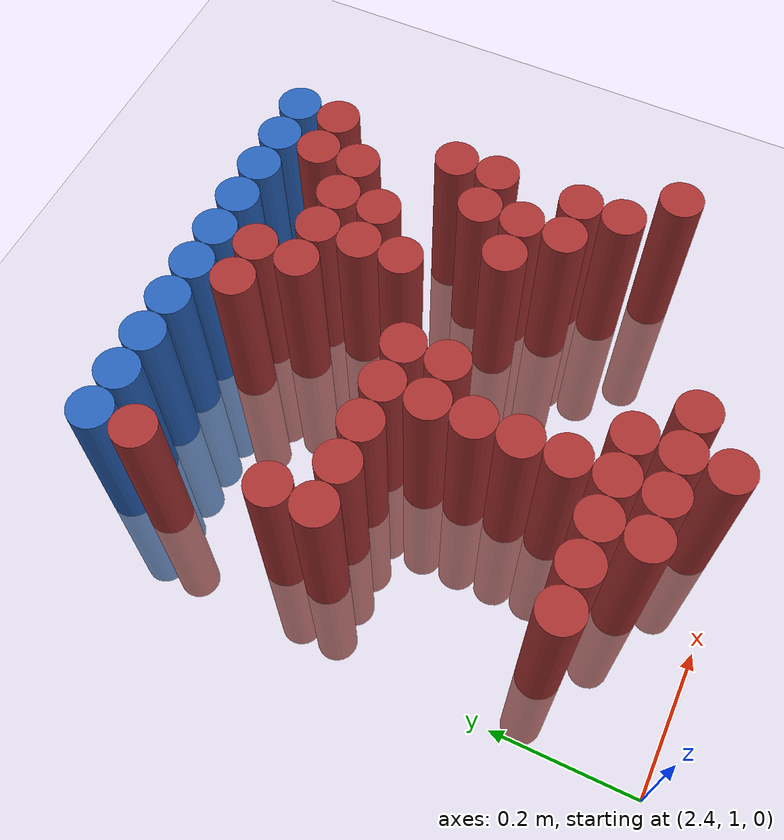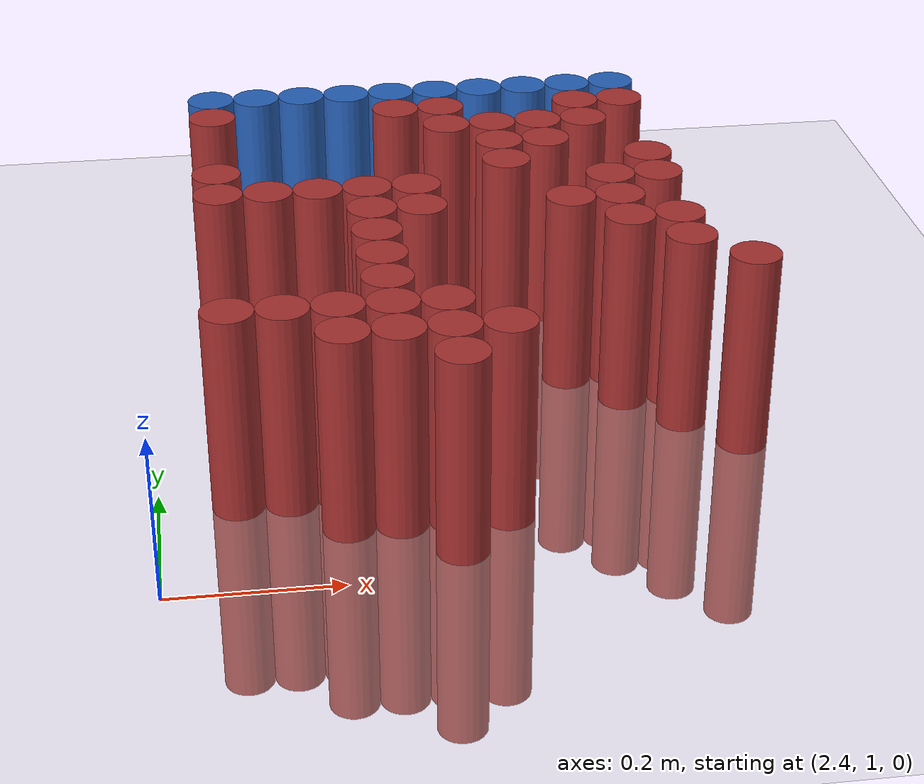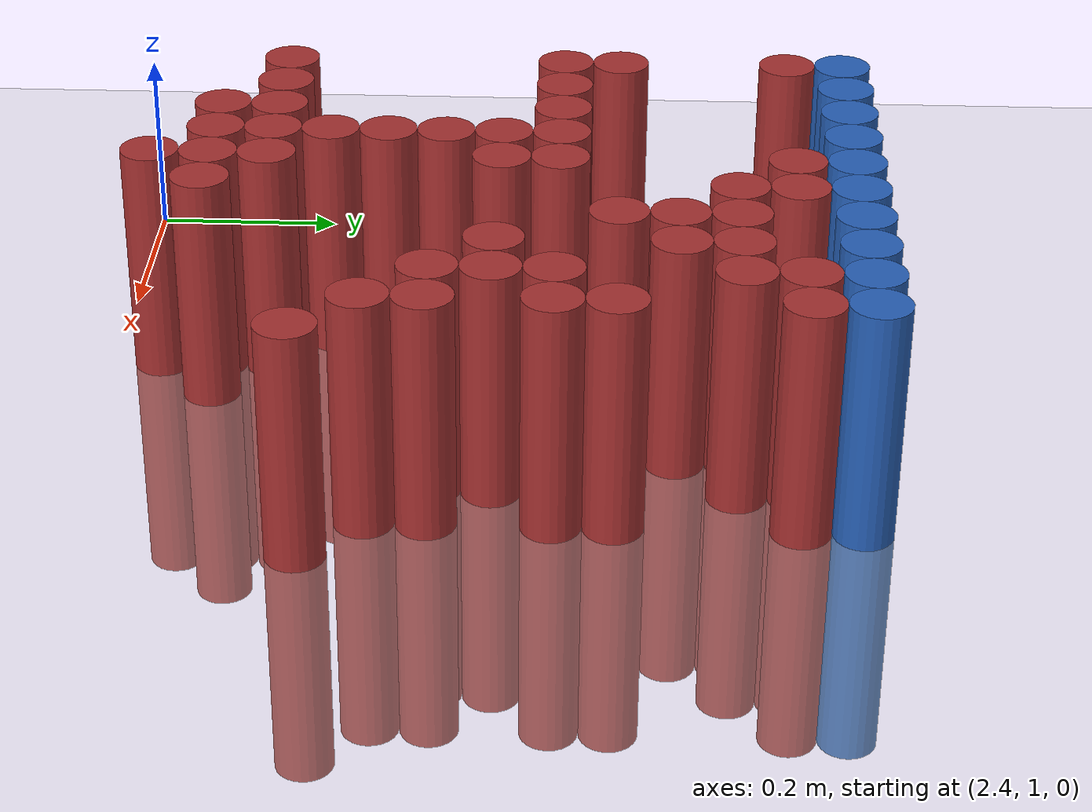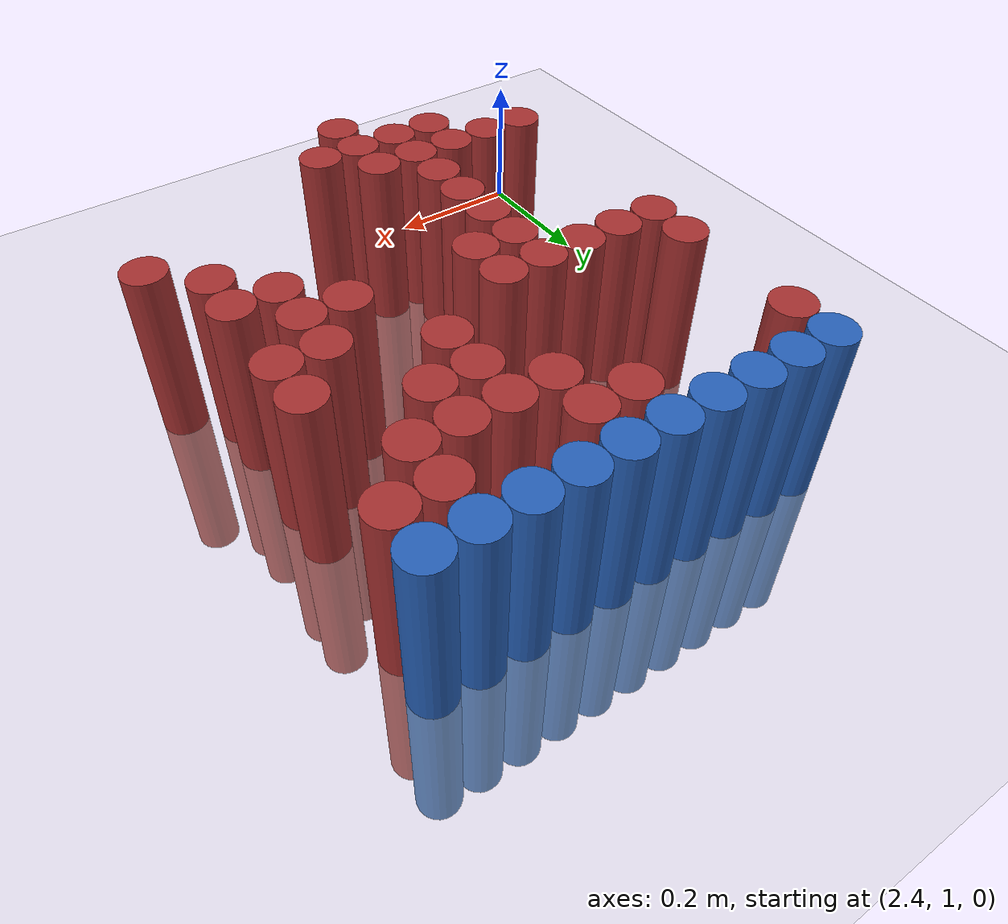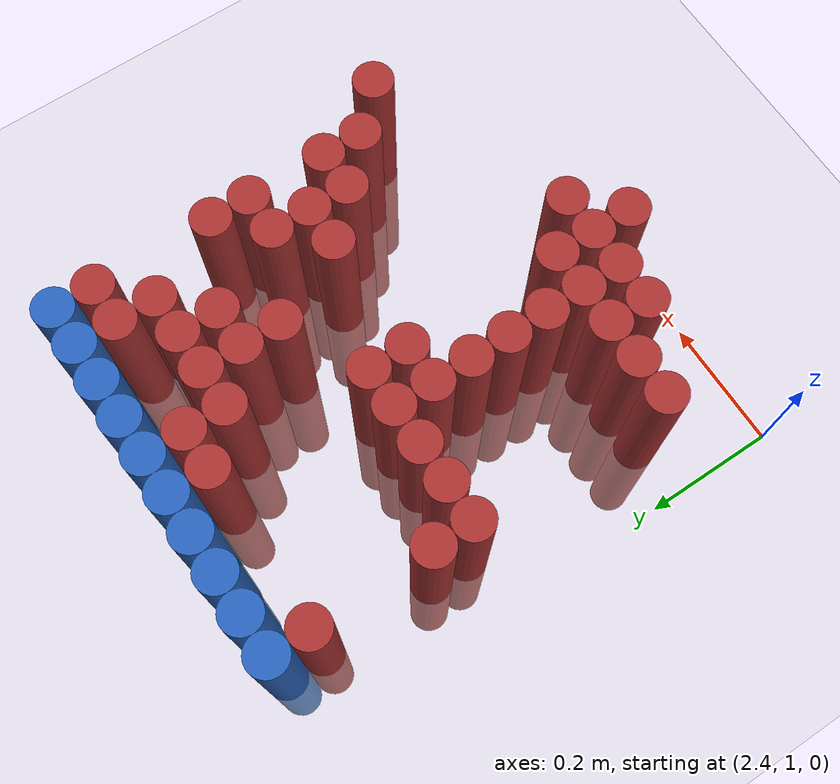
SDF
<sdf version="1.6">
 <world name="default">
  <model name="ground_plane">
   <static>1</static>
   <link name="link">
    <collision name="collision">
     <geometry><plane><normal>0 0 1</normal><size>100 100</size></plane></geometry>
     <surface><friction><ode><mu>100</mu><mu2>50</mu2></ode></friction></surface>
    </collision>
    <visual name="visual">
     <cast_shadows>0</cast_shadows>
     <geometry><plane><normal>0 0 1</normal><size>100 100</size></plane></geometry>
     <material>
      <script><uri>file://media/materials/scripts/gazebo.material</uri><name>Gazebo/Grey</name></script>
     </material>
    </visual>
   </link>
  </model>
  <model name="unit_cylinder_102">
   <static>1</static>
   <pose>2.490000 1.770000 0.000000 0.000000 0.000000 0.000000</pose>
   <link name="link">
    <inertial>
     <mass>1</mass>
     <inertia><ixx>0.145833</ixx><ixy>0</ixy><ixz>0</ixz><iyy>0.145833</iyy><iyz>0</iyz><izz>0.125</izz></inertia>
    </inertial>
    <collision name="collision">
     <geometry><cylinder><radius>0.030000</radius><length>0.5</length></cylinder></geometry>
    </collision>
    <visual name="visual">
     <geometry><cylinder><radius>0.030000</radius><length>0.5</length></cylinder></geometry>
     <material>
      <ambient>0.152000 0.379000 0.720000 1</ambient>
      <diffuse>0.152000 0.379000 0.720000 1</diffuse>
     </material>
     <material>
      <script><name>Gazebo/Grey</name><uri>file://media/materials/scripts/gazebo.material</uri></script>
     </material>
    </visual>
   </link>
  </model>
  <model name="unit_cylinder_103">
   <static>1</static>
   <pose>2.550000 1.770000 0.000000 0.000000 0.000000 0.000000</pose>
   <link name="link">
    <inertial>
     <mass>1</mass>
     <inertia><ixx>0.145833</ixx><ixy>0</ixy><ixz>0</ixz><iyy>0.145833</iyy><iyz>0</iyz><izz>0.125</izz></inertia>
    </inertial>
    <collision name="collision">
     <geometry><cylinder><radius>0.030000</radius><length>0.5</length></cylinder></geometry>
    </collision>
    <visual name="visual">
     <geometry><cylinder><radius>0.030000</radius><length>0.5</length></cylinder></geometry>
     <material>
      <ambient>0.152000 0.379000 0.720000 1</ambient>
      <diffuse>0.152000 0.379000 0.720000 1</diffuse>
     </material>
     <material>
      <script><name>Gazebo/Grey</name><uri>file://media/materials/scripts/gazebo.material</uri></script>
     </material>
    </visual>
   </link>
  </model>
  <model name="unit_cylinder_104">
   <static>1</static>
   <pose>2.610000 1.770000 0.000000 0.000000 0.000000 0.000000</pose>
   <link name="link">
    <inertial>
     <mass>1</mass>
     <inertia><ixx>0.145833</ixx><ixy>0</ixy><ixz>0</ixz><iyy>0.145833</iyy><iyz>0</iyz><izz>0.125</izz></inertia>
    </inertial>
    <collision name="collision">
     <geometry><cylinder><radius>0.030000</radius><length>0.5</length></cylinder></geometry>
    </collision>
    <visual name="visual">
     <geometry><cylinder><radius>0.030000</radius><length>0.5</length></cylinder></geometry>
     <material>
      <ambient>0.152000 0.379000 0.720000 1</ambient>
      <diffuse>0.152000 0.379000 0.720000 1</diffuse>
     </material>
     <material>
      <script><name>Gazebo/Grey</name><uri>file://media/materials/scripts/gazebo.material</uri></script>
     </material>
    </visual>
   </link>
  </model>
  <model name="unit_cylinder_105">
   <static>1</static>
   <pose>2.670000 1.770000 0.000000 0.000000 0.000000 0.000000</pose>
   <link name="link">
    <inertial>
     <mass>1</mass>
     <inertia><ixx>0.145833</ixx><ixy>0</ixy><ixz>0</ixz><iyy>0.145833</iyy><iyz>0</iyz><izz>0.125</izz></inertia>
    </inertial>
    <collision name="collision">
     <geometry><cylinder><radius>0.030000</radius><length>0.5</length></cylinder></geometry>
    </collision>
    <visual name="visual">
     <geometry><cylinder><radius>0.030000</radius><length>0.5</length></cylinder></geometry>
     <material>
      <ambient>0.152000 0.379000 0.720000 1</ambient>
      <diffuse>0.152000 0.379000 0.720000 1</diffuse>
     </material>
     <material>
      <script><name>Gazebo/Grey</name><uri>file://media/materials/scripts/gazebo.material</uri></script>
     </material>
    </visual>
   </link>
  </model>
  <model name="unit_cylinder_106">
   <static>1</static>
   <pose>2.730000 1.770000 0.000000 0.000000 0.000000 0.000000</pose>
   <link name="link">
    <inertial>
     <mass>1</mass>
     <inertia><ixx>0.145833</ixx><ixy>0</ixy><ixz>0</ixz><iyy>0.145833</iyy><iyz>0</iyz><izz>0.125</izz></inertia>
    </inertial>
    <collision name="collision">
     <geometry><cylinder><radius>0.030000</radius><length>0.5</length></cylinder></geometry>
    </collision>
    <visual name="visual">
     <geometry><cylinder><radius>0.030000</radius><length>0.5</length></cylinder></geometry>
     <material>
      <ambient>0.152000 0.379000 0.720000 1</ambient>
      <diffuse>0.152000 0.379000 0.720000 1</diffuse>
     </material>
     <material>
      <script><name>Gazebo/Grey</name><uri>file://media/materials/scripts/gazebo.material</uri></script>
     </material>
    </visual>
   </link>
  </model>
  <model name="unit_cylinder_107">
   <static>1</static>
   <pose>2.790000 1.770000 0.000000 0.000000 0.000000 0.000000</pose>
   <link name="link">
    <inertial>
     <mass>1</mass>
     <inertia><ixx>0.145833</ixx><ixy>0</ixy><ixz>0</ixz><iyy>0.145833</iyy><iyz>0</iyz><izz>0.125</izz></inertia>
    </inertial>
    <collision name="collision">
     <geometry><cylinder><radius>0.030000</radius><length>0.5</length></cylinder></geometry>
    </collision>
    <visual name="visual">
     <geometry><cylinder><radius>0.030000</radius><length>0.5</length></cylinder></geometry>
     <material>
      <ambient>0.152000 0.379000 0.720000 1</ambient>
      <diffuse>0.152000 0.379000 0.720000 1</diffuse>
     </material>
     <material>
      <script><name>Gazebo/Grey</name><uri>file://media/materials/scripts/gazebo.material</uri></script>
     </material>
    </visual>
   </link>
  </model>
  <model name="unit_cylinder_108">
   <static>1</static>
   <pose>2.850000 1.770000 0.000000 0.000000 0.000000 0.000000</pose>
   <link name="link">
    <inertial>
     <mass>1</mass>
     <inertia><ixx>0.145833</ixx><ixy>0</ixy><ixz>0</ixz><iyy>0.145833</iyy><iyz>0</iyz><izz>0.125</izz></inertia>
    </inertial>
    <collision name="collision">
     <geometry><cylinder><radius>0.030000</radius><length>0.5</length></cylinder></geometry>
    </collision>
    <visual name="visual">
     <geometry><cylinder><radius>0.030000</radius><length>0.5</length></cylinder></geometry>
     <material>
      <ambient>0.152000 0.379000 0.720000 1</ambient>
      <diffuse>0.152000 0.379000 0.720000 1</diffuse>
     </material>
     <material>
      <script><name>Gazebo/Grey</name><uri>file://media/materials/scripts/gazebo.material</uri></script>
     </material>
    </visual>
   </link>
  </model>
  <model name="unit_cylinder_109">
   <static>1</static>
   <pose>2.910000 1.770000 0.000000 0.000000 0.000000 0.000000</pose>
   <link name="link">
    <inertial>
     <mass>1</mass>
     <inertia><ixx>0.145833</ixx><ixy>0</ixy><ixz>0</ixz><iyy>0.145833</iyy><iyz>0</iyz><izz>0.125</izz></inertia>
    </inertial>
    <collision name="collision">
     <geometry><cylinder><radius>0.030000</radius><length>0.5</length></cylinder></geometry>
    </collision>
    <visual name="visual">
     <geometry><cylinder><radius>0.030000</radius><length>0.5</length></cylinder></geometry>
     <material>
      <ambient>0.152000 0.379000 0.720000 1</ambient>
      <diffuse>0.152000 0.379000 0.720000 1</diffuse>
     </material>
     <material>
      <script><name>Gazebo/Grey</name><uri>file://media/materials/scripts/gazebo.material</uri></script>
     </material>
    </visual>
   </link>
  </model>
  <model name="unit_cylinder_110">
   <static>1</static>
   <pose>2.970000 1.770000 0.000000 0.000000 0.000000 0.000000</pose>
   <link name="link">
    <inertial>
     <mass>1</mass>
     <inertia><ixx>0.145833</ixx><ixy>0</ixy><ixz>0</ixz><iyy>0.145833</iyy><iyz>0</iyz><izz>0.125</izz></inertia>
    </inertial>
    <collision name="collision">
     <geometry><cylinder><radius>0.030000</radius><length>0.5</length></cylinder></geometry>
    </collision>
    <visual name="visual">
     <geometry><cylinder><radius>0.030000</radius><length>0.5</length></cylinder></geometry>
     <material>
      <ambient>0.152000 0.379000 0.720000 1</ambient>
      <diffuse>0.152000 0.379000 0.720000 1</diffuse>
     </material>
     <material>
      <script><name>Gazebo/Grey</name><uri>file://media/materials/scripts/gazebo.material</uri></script>
     </material>
    </visual>
   </link>
  </model>
  <model name="unit_cylinder_111">
   <static>1</static>
   <pose>3.030000 1.770000 0.000000 0.000000 0.000000 0.000000</pose>
   <link name="link">
    <inertial>
     <mass>1</mass>
     <inertia><ixx>0.145833</ixx><ixy>0</ixy><ixz>0</ixz><iyy>0.145833</iyy><iyz>0</iyz><izz>0.125</izz></inertia>
    </inertial>
    <collision name="collision">
     <geometry><cylinder><radius>0.030000</radius><length>0.5</length></cylinder></geometry>
    </collision>
    <visual name="visual">
     <geometry><cylinder><radius>0.030000</radius><length>0.5</length></cylinder></geometry>
     <material>
      <ambient>0.152000 0.379000 0.720000 1</ambient>
      <diffuse>0.152000 0.379000 0.720000 1</diffuse>
     </material>
     <material>
      <script><name>Gazebo/Grey</name><uri>file://media/materials/scripts/gazebo.material</uri></script>
     </material>
    </visual>
   </link>
  </model>
  <model name="unit_cylinder_127">
   <static>1</static>
   <pose>2.490000 1.710000 0.000000 0.000000 0.000000 0.000000</pose>
   <link name="link">
    <inertial>
     <mass>1</mass>
     <inertia><ixx>0.145833</ixx><ixy>0</ixy><ixz>0</ixz><iyy>0.145833</iyy><iyz>0</iyz><izz>0.125</izz></inertia>
    </inertial>
    <collision name="collision">
     <geometry><cylinder><radius>0.030000</radius><length>0.5</length></cylinder></geometry>
    </collision>
    <visual name="visual">
     <geometry><cylinder><radius>0.030000</radius><length>0.5</length></cylinder></geometry>
     <material>
      <ambient>0.648000 0.192000 0.192000 1</ambient>
      <diffuse>0.648000 0.192000 0.192000 1</diffuse>
     </material>
     <material>
      <script><name>Gazebo/Grey</name><uri>file://media/materials/scripts/gazebo.material</uri></script>
     </material>
    </visual>
   </link>
  </model>
  <model name="unit_cylinder_128">
   <static>1</static>
   <pose>2.730000 1.710000 0.000000 0.000000 0.000000 0.000000</pose>
   <link name="link">
    <inertial>
     <mass>1</mass>
     <inertia><ixx>0.145833</ixx><ixy>0</ixy><ixz>0</ixz><iyy>0.145833</iyy><iyz>0</iyz><izz>0.125</izz></inertia>
    </inertial>
    <collision name="collision">
     <geometry><cylinder><radius>0.030000</radius><length>0.5</length></cylinder></geometry>
    </collision>
    <visual name="visual">
     <geometry><cylinder><radius>0.030000</radius><length>0.5</length></cylinder></geometry>
     <material>
      <ambient>0.648000 0.192000 0.192000 1</ambient>
      <diffuse>0.648000 0.192000 0.192000 1</diffuse>
     </material>
     <material>
      <script><name>Gazebo/Grey</name><uri>file://media/materials/scripts/gazebo.material</uri></script>
     </material>
    </visual>
   </link>
  </model>
  <model name="unit_cylinder_129">
   <static>1</static>
   <pose>2.790000 1.710000 0.000000 0.000000 0.000000 0.000000</pose>
   <link name="link">
    <inertial>
     <mass>1</mass>
     <inertia><ixx>0.145833</ixx><ixy>0</ixy><ixz>0</ixz><iyy>0.145833</iyy><iyz>0</iyz><izz>0.125</izz></inertia>
    </inertial>
    <collision name="collision">
     <geometry><cylinder><radius>0.030000</radius><length>0.5</length></cylinder></geometry>
    </collision>
    <visual name="visual">
     <geometry><cylinder><radius>0.030000</radius><length>0.5</length></cylinder></geometry>
     <material>
      <ambient>0.648000 0.192000 0.192000 1</ambient>
      <diffuse>0.648000 0.192000 0.192000 1</diffuse>
     </material>
     <material>
      <script><name>Gazebo/Grey</name><uri>file://media/materials/scripts/gazebo.material</uri></script>
     </material>
    </visual>
   </link>
  </model>
  <model name="unit_cylinder_130">
   <static>1</static>
   <pose>2.970000 1.710000 0.000000 0.000000 0.000000 0.000000</pose>
   <link name="link">
    <inertial>
     <mass>1</mass>
     <inertia><ixx>0.145833</ixx><ixy>0</ixy><ixz>0</ixz><iyy>0.145833</iyy><iyz>0</iyz><izz>0.125</izz></inertia>
    </inertial>
    <collision name="collision">
     <geometry><cylinder><radius>0.030000</radius><length>0.5</length></cylinder></geometry>
    </collision>
    <visual name="visual">
     <geometry><cylinder><radius>0.030000</radius><length>0.5</length></cylinder></geometry>
     <material>
      <ambient>0.648000 0.192000 0.192000 1</ambient>
      <diffuse>0.648000 0.192000 0.192000 1</diffuse>
     </material>
     <material>
      <script><name>Gazebo/Grey</name><uri>file://media/materials/scripts/gazebo.material</uri></script>
     </material>
    </visual>
   </link>
  </model>
  <model name="unit_cylinder_131">
   <static>1</static>
   <pose>3.030000 1.710000 0.000000 0.000000 0.000000 0.000000</pose>
   <link name="link">
    <inertial>
     <mass>1</mass>
     <inertia><ixx>0.145833</ixx><ixy>0</ixy><ixz>0</ixz><iyy>0.145833</iyy><iyz>0</iyz><izz>0.125</izz></inertia>
    </inertial>
    <collision name="collision">
     <geometry><cylinder><radius>0.030000</radius><length>0.5</length></cylinder></geometry>
    </collision>
    <visual name="visual">
     <geometry><cylinder><radius>0.030000</radius><length>0.5</length></cylinder></geometry>
     <material>
      <ambient>0.648000 0.192000 0.192000 1</ambient>
      <diffuse>0.648000 0.192000 0.192000 1</diffuse>
     </material>
     <material>
      <script><name>Gazebo/Grey</name><uri>file://media/materials/scripts/gazebo.material</uri></script>
     </material>
    </visual>
   </link>
  </model>
  <model name="unit_cylinder_141">
   <static>1</static>
   <pose>2.790000 1.650000 0.000000 0.000000 0.000000 0.000000</pose>
   <link name="link">
    <inertial>
     <mass>1</mass>
     <inertia><ixx>0.145833</ixx><ixy>0</ixy><ixz>0</ixz><iyy>0.145833</iyy><iyz>0</iyz><izz>0.125</izz></inertia>
    </inertial>
    <collision name="collision">
     <geometry><cylinder><radius>0.030000</radius><length>0.5</length></cylinder></geometry>
    </collision>
    <visual name="visual">
     <geometry><cylinder><radius>0.030000</radius><length>0.5</length></cylinder></geometry>
     <material>
      <ambient>0.648000 0.192000 0.192000 1</ambient>
      <diffuse>0.648000 0.192000 0.192000 1</diffuse>
     </material>
     <material>
      <script><name>Gazebo/Grey</name><uri>file://media/materials/scripts/gazebo.material</uri></script>
     </material>
    </visual>
   </link>
  </model>
  <model name="unit_cylinder_142">
   <static>1</static>
   <pose>2.850000 1.650000 0.000000 0.000000 0.000000 0.000000</pose>
   <link name="link">
    <inertial>
     <mass>1</mass>
     <inertia><ixx>0.145833</ixx><ixy>0</ixy><ixz>0</ixz><iyy>0.145833</iyy><iyz>0</iyz><izz>0.125</izz></inertia>
    </inertial>
    <collision name="collision">
     <geometry><cylinder><radius>0.030000</radius><length>0.5</length></cylinder></geometry>
    </collision>
    <visual name="visual">
     <geometry><cylinder><radius>0.030000</radius><length>0.5</length></cylinder></geometry>
     <material>
      <ambient>0.648000 0.192000 0.192000 1</ambient>
      <diffuse>0.648000 0.192000 0.192000 1</diffuse>
     </material>
     <material>
      <script><name>Gazebo/Grey</name><uri>file://media/materials/scripts/gazebo.material</uri></script>
     </material>
    </visual>
   </link>
  </model>
  <model name="unit_cylinder_143">
   <static>1</static>
   <pose>2.910000 1.650000 0.000000 0.000000 0.000000 0.000000</pose>
   <link name="link">
    <inertial>
     <mass>1</mass>
     <inertia><ixx>0.145833</ixx><ixy>0</ixy><ixz>0</ixz><iyy>0.145833</iyy><iyz>0</iyz><izz>0.125</izz></inertia>
    </inertial>
    <collision name="collision">
     <geometry><cylinder><radius>0.030000</radius><length>0.5</length></cylinder></geometry>
    </collision>
    <visual name="visual">
     <geometry><cylinder><radius>0.030000</radius><length>0.5</length></cylinder></geometry>
     <material>
      <ambient>0.648000 0.192000 0.192000 1</ambient>
      <diffuse>0.648000 0.192000 0.192000 1</diffuse>
     </material>
     <material>
      <script><name>Gazebo/Grey</name><uri>file://media/materials/scripts/gazebo.material</uri></script>
     </material>
    </visual>
   </link>
  </model>
  <model name="unit_cylinder_144">
   <static>1</static>
   <pose>2.970000 1.650000 0.000000 0.000000 0.000000 0.000000</pose>
   <link name="link">
    <inertial>
     <mass>1</mass>
     <inertia><ixx>0.145833</ixx><ixy>0</ixy><ixz>0</ixz><iyy>0.145833</iyy><iyz>0</iyz><izz>0.125</izz></inertia>
    </inertial>
    <collision name="collision">
     <geometry><cylinder><radius>0.030000</radius><length>0.5</length></cylinder></geometry>
    </collision>
    <visual name="visual">
     <geometry><cylinder><radius>0.030000</radius><length>0.5</length></cylinder></geometry>
     <material>
      <ambient>0.648000 0.192000 0.192000 1</ambient>
      <diffuse>0.648000 0.192000 0.192000 1</diffuse>
     </material>
     <material>
      <script><name>Gazebo/Grey</name><uri>file://media/materials/scripts/gazebo.material</uri></script>
     </material>
    </visual>
   </link>
  </model>
  <model name="unit_cylinder_150">
   <static>1</static>
   <pose>2.850000 1.590000 0.000000 0.000000 0.000000 0.000000</pose>
   <link name="link">
    <inertial>
     <mass>1</mass>
     <inertia><ixx>0.145833</ixx><ixy>0</ixy><ixz>0</ixz><iyy>0.145833</iyy><iyz>0</iyz><izz>0.125</izz></inertia>
    </inertial>
    <collision name="collision">
     <geometry><cylinder><radius>0.030000</radius><length>0.5</length></cylinder></geometry>
    </collision>
    <visual name="visual">
     <geometry><cylinder><radius>0.030000</radius><length>0.5</length></cylinder></geometry>
     <material>
      <ambient>0.648000 0.192000 0.192000 1</ambient>
      <diffuse>0.648000 0.192000 0.192000 1</diffuse>
     </material>
     <material>
      <script><name>Gazebo/Grey</name><uri>file://media/materials/scripts/gazebo.material</uri></script>
     </material>
    </visual>
   </link>
  </model>
  <model name="unit_cylinder_151">
   <static>1</static>
   <pose>2.910000 1.590000 0.000000 0.000000 0.000000 0.000000</pose>
   <link name="link">
    <inertial>
     <mass>1</mass>
     <inertia><ixx>0.145833</ixx><ixy>0</ixy><ixz>0</ixz><iyy>0.145833</iyy><iyz>0</iyz><izz>0.125</izz></inertia>
    </inertial>
    <collision name="collision">
     <geometry><cylinder><radius>0.030000</radius><length>0.5</length></cylinder></geometry>
    </collision>
    <visual name="visual">
     <geometry><cylinder><radius>0.030000</radius><length>0.5</length></cylinder></geometry>
     <material>
      <ambient>0.648000 0.192000 0.192000 1</ambient>
      <diffuse>0.648000 0.192000 0.192000 1</diffuse>
     </material>
     <material>
      <script><name>Gazebo/Grey</name><uri>file://media/materials/scripts/gazebo.material</uri></script>
     </material>
    </visual>
   </link>
  </model>
  <model name="unit_cylinder_161">
   <static>1</static>
   <pose>2.490000 1.530000 0.000000 0.000000 0.000000 0.000000</pose>
   <link name="link">
    <inertial>
     <mass>1</mass>
     <inertia><ixx>0.145833</ixx><ixy>0</ixy><ixz>0</ixz><iyy>0.145833</iyy><iyz>0</iyz><izz>0.125</izz></inertia>
    </inertial>
    <collision name="collision">
     <geometry><cylinder><radius>0.030000</radius><length>0.5</length></cylinder></geometry>
    </collision>
    <visual name="visual">
     <geometry><cylinder><radius>0.030000</radius><length>0.5</length></cylinder></geometry>
     <material>
      <ambient>0.648000 0.192000 0.192000 1</ambient>
      <diffuse>0.648000 0.192000 0.192000 1</diffuse>
     </material>
     <material>
      <script><name>Gazebo/Grey</name><uri>file://media/materials/scripts/gazebo.material</uri></script>
     </material>
    </visual>
   </link>
  </model>
  <model name="unit_cylinder_162">
   <static>1</static>
   <pose>2.850000 1.530000 0.000000 0.000000 0.000000 0.000000</pose>
   <link name="link">
    <inertial>
     <mass>1</mass>
     <inertia><ixx>0.145833</ixx><ixy>0</ixy><ixz>0</ixz><iyy>0.145833</iyy><iyz>0</iyz><izz>0.125</izz></inertia>
    </inertial>
    <collision name="collision">
     <geometry><cylinder><radius>0.030000</radius><length>0.5</length></cylinder></geometry>
    </collision>
    <visual name="visual">
     <geometry><cylinder><radius>0.030000</radius><length>0.5</length></cylinder></geometry>
     <material>
      <ambient>0.648000 0.192000 0.192000 1</ambient>
      <diffuse>0.648000 0.192000 0.192000 1</diffuse>
     </material>
     <material>
      <script><name>Gazebo/Grey</name><uri>file://media/materials/scripts/gazebo.material</uri></script>
     </material>
    </visual>
   </link>
  </model>
  <model name="unit_cylinder_163">
   <static>1</static>
   <pose>3.030000 1.530000 0.000000 0.000000 0.000000 0.000000</pose>
   <link name="link">
    <inertial>
     <mass>1</mass>
     <inertia><ixx>0.145833</ixx><ixy>0</ixy><ixz>0</ixz><iyy>0.145833</iyy><iyz>0</iyz><izz>0.125</izz></inertia>
    </inertial>
    <collision name="collision">
     <geometry><cylinder><radius>0.030000</radius><length>0.5</length></cylinder></geometry>
    </collision>
    <visual name="visual">
     <geometry><cylinder><radius>0.030000</radius><length>0.5</length></cylinder></geometry>
     <material>
      <ambient>0.648000 0.192000 0.192000 1</ambient>
      <diffuse>0.648000 0.192000 0.192000 1</diffuse>
     </material>
     <material>
      <script><name>Gazebo/Grey</name><uri>file://media/materials/scripts/gazebo.material</uri></script>
     </material>
    </visual>
   </link>
  </model>
  <model name="unit_cylinder_169">
   <static>1</static>
   <pose>2.490000 1.470000 0.000000 0.000000 0.000000 0.000000</pose>
   <link name="link">
    <inertial>
     <mass>1</mass>
     <inertia><ixx>0.145833</ixx><ixy>0</ixy><ixz>0</ixz><iyy>0.145833</iyy><iyz>0</iyz><izz>0.125</izz></inertia>
    </inertial>
    <collision name="collision">
     <geometry><cylinder><radius>0.030000</radius><length>0.5</length></cylinder></geometry>
    </collision>
    <visual name="visual">
     <geometry><cylinder><radius>0.030000</radius><length>0.5</length></cylinder></geometry>
     <material>
      <ambient>0.648000 0.192000 0.192000 1</ambient>
      <diffuse>0.648000 0.192000 0.192000 1</diffuse>
     </material>
     <material>
      <script><name>Gazebo/Grey</name><uri>file://media/materials/scripts/gazebo.material</uri></script>
     </material>
    </visual>
   </link>
  </model>
  <model name="unit_cylinder_170">
   <static>1</static>
   <pose>2.550000 1.470000 0.000000 0.000000 0.000000 0.000000</pose>
   <link name="link">
    <inertial>
     <mass>1</mass>
     <inertia><ixx>0.145833</ixx><ixy>0</ixy><ixz>0</ixz><iyy>0.145833</iyy><iyz>0</iyz><izz>0.125</izz></inertia>
    </inertial>
    <collision name="collision">
     <geometry><cylinder><radius>0.030000</radius><length>0.5</length></cylinder></geometry>
    </collision>
    <visual name="visual">
     <geometry><cylinder><radius>0.030000</radius><length>0.5</length></cylinder></geometry>
     <material>
      <ambient>0.648000 0.192000 0.192000 1</ambient>
      <diffuse>0.648000 0.192000 0.192000 1</diffuse>
     </material>
     <material>
      <script><name>Gazebo/Grey</name><uri>file://media/materials/scripts/gazebo.material</uri></script>
     </material>
    </visual>
   </link>
  </model>
  <model name="unit_cylinder_171">
   <static>1</static>
   <pose>2.610000 1.470000 0.000000 0.000000 0.000000 0.000000</pose>
   <link name="link">
    <inertial>
     <mass>1</mass>
     <inertia><ixx>0.145833</ixx><ixy>0</ixy><ixz>0</ixz><iyy>0.145833</iyy><iyz>0</iyz><izz>0.125</izz></inertia>
    </inertial>
    <collision name="collision">
     <geometry><cylinder><radius>0.030000</radius><length>0.5</length></cylinder></geometry>
    </collision>
    <visual name="visual">
     <geometry><cylinder><radius>0.030000</radius><length>0.5</length></cylinder></geometry>
     <material>
      <ambient>0.648000 0.192000 0.192000 1</ambient>
      <diffuse>0.648000 0.192000 0.192000 1</diffuse>
     </material>
     <material>
      <script><name>Gazebo/Grey</name><uri>file://media/materials/scripts/gazebo.material</uri></script>
     </material>
    </visual>
   </link>
  </model>
  <model name="unit_cylinder_172">
   <static>1</static>
   <pose>2.670000 1.470000 0.000000 0.000000 0.000000 0.000000</pose>
   <link name="link">
    <inertial>
     <mass>1</mass>
     <inertia><ixx>0.145833</ixx><ixy>0</ixy><ixz>0</ixz><iyy>0.145833</iyy><iyz>0</iyz><izz>0.125</izz></inertia>
    </inertial>
    <collision name="collision">
     <geometry><cylinder><radius>0.030000</radius><length>0.5</length></cylinder></geometry>
    </collision>
    <visual name="visual">
     <geometry><cylinder><radius>0.030000</radius><length>0.5</length></cylinder></geometry>
     <material>
      <ambient>0.648000 0.192000 0.192000 1</ambient>
      <diffuse>0.648000 0.192000 0.192000 1</diffuse>
     </material>
     <material>
      <script><name>Gazebo/Grey</name><uri>file://media/materials/scripts/gazebo.material</uri></script>
     </material>
    </visual>
   </link>
  </model>
  <model name="unit_cylinder_173">
   <static>1</static>
   <pose>2.730000 1.470000 0.000000 0.000000 0.000000 0.000000</pose>
   <link name="link">
    <inertial>
     <mass>1</mass>
     <inertia><ixx>0.145833</ixx><ixy>0</ixy><ixz>0</ixz><iyy>0.145833</iyy><iyz>0</iyz><izz>0.125</izz></inertia>
    </inertial>
    <collision name="collision">
     <geometry><cylinder><radius>0.030000</radius><length>0.5</length></cylinder></geometry>
    </collision>
    <visual name="visual">
     <geometry><cylinder><radius>0.030000</radius><length>0.5</length></cylinder></geometry>
     <material>
      <ambient>0.648000 0.192000 0.192000 1</ambient>
      <diffuse>0.648000 0.192000 0.192000 1</diffuse>
     </material>
     <material>
      <script><name>Gazebo/Grey</name><uri>file://media/materials/scripts/gazebo.material</uri></script>
     </material>
    </visual>
   </link>
  </model>
  <model name="unit_cylinder_174">
   <static>1</static>
   <pose>2.970000 1.470000 0.000000 0.000000 0.000000 0.000000</pose>
   <link name="link">
    <inertial>
     <mass>1</mass>
     <inertia><ixx>0.145833</ixx><ixy>0</ixy><ixz>0</ixz><iyy>0.145833</iyy><iyz>0</iyz><izz>0.125</izz></inertia>
    </inertial>
    <collision name="collision">
     <geometry><cylinder><radius>0.030000</radius><length>0.5</length></cylinder></geometry>
    </collision>
    <visual name="visual">
     <geometry><cylinder><radius>0.030000</radius><length>0.5</length></cylinder></geometry>
     <material>
      <ambient>0.648000 0.192000 0.192000 1</ambient>
      <diffuse>0.648000 0.192000 0.192000 1</diffuse>
     </material>
     <material>
      <script><name>Gazebo/Grey</name><uri>file://media/materials/scripts/gazebo.material</uri></script>
     </material>
    </visual>
   </link>
  </model>
  <model name="unit_cylinder_175">
   <static>1</static>
   <pose>3.030000 1.470000 0.000000 0.000000 0.000000 0.000000</pose>
   <link name="link">
    <inertial>
     <mass>1</mass>
     <inertia><ixx>0.145833</ixx><ixy>0</ixy><ixz>0</ixz><iyy>0.145833</iyy><iyz>0</iyz><izz>0.125</izz></inertia>
    </inertial>
    <collision name="collision">
     <geometry><cylinder><radius>0.030000</radius><length>0.5</length></cylinder></geometry>
    </collision>
    <visual name="visual">
     <geometry><cylinder><radius>0.030000</radius><length>0.5</length></cylinder></geometry>
     <material>
      <ambient>0.648000 0.192000 0.192000 1</ambient>
      <diffuse>0.648000 0.192000 0.192000 1</diffuse>
     </material>
     <material>
      <script><name>Gazebo/Grey</name><uri>file://media/materials/scripts/gazebo.material</uri></script>
     </material>
    </visual>
   </link>
  </model>
  <model name="unit_cylinder_178">
   <static>1</static>
   <pose>2.670000 1.410000 0.000000 0.000000 0.000000 0.000000</pose>
   <link name="link">
    <inertial>
     <mass>1</mass>
     <inertia><ixx>0.145833</ixx><ixy>0</ixy><ixz>0</ixz><iyy>0.145833</iyy><iyz>0</iyz><izz>0.125</izz></inertia>
    </inertial>
    <collision name="collision">
     <geometry><cylinder><radius>0.030000</radius><length>0.5</length></cylinder></geometry>
    </collision>
    <visual name="visual">
     <geometry><cylinder><radius>0.030000</radius><length>0.5</length></cylinder></geometry>
     <material>
      <ambient>0.648000 0.192000 0.192000 1</ambient>
      <diffuse>0.648000 0.192000 0.192000 1</diffuse>
     </material>
     <material>
      <script><name>Gazebo/Grey</name><uri>file://media/materials/scripts/gazebo.material</uri></script>
     </material>
    </visual>
   </link>
  </model>
  <model name="unit_cylinder_179">
   <static>1</static>
   <pose>2.730000 1.410000 0.000000 0.000000 0.000000 0.000000</pose>
   <link name="link">
    <inertial>
     <mass>1</mass>
     <inertia><ixx>0.145833</ixx><ixy>0</ixy><ixz>0</ixz><iyy>0.145833</iyy><iyz>0</iyz><izz>0.125</izz></inertia>
    </inertial>
    <collision name="collision">
     <geometry><cylinder><radius>0.030000</radius><length>0.5</length></cylinder></geometry>
    </collision>
    <visual name="visual">
     <geometry><cylinder><radius>0.030000</radius><length>0.5</length></cylinder></geometry>
     <material>
      <ambient>0.648000 0.192000 0.192000 1</ambient>
      <diffuse>0.648000 0.192000 0.192000 1</diffuse>
     </material>
     <material>
      <script><name>Gazebo/Grey</name><uri>file://media/materials/scripts/gazebo.material</uri></script>
     </material>
    </visual>
   </link>
  </model>
  <model name="unit_cylinder_180">
   <static>1</static>
   <pose>2.910000 1.410000 0.000000 0.000000 0.000000 0.000000</pose>
   <link name="link">
    <inertial>
     <mass>1</mass>
     <inertia><ixx>0.145833</ixx><ixy>0</ixy><ixz>0</ixz><iyy>0.145833</iyy><iyz>0</iyz><izz>0.125</izz></inertia>
    </inertial>
    <collision name="collision">
     <geometry><cylinder><radius>0.030000</radius><length>0.5</length></cylinder></geometry>
    </collision>
    <visual name="visual">
     <geometry><cylinder><radius>0.030000</radius><length>0.5</length></cylinder></geometry>
     <material>
      <ambient>0.648000 0.192000 0.192000 1</ambient>
      <diffuse>0.648000 0.192000 0.192000 1</diffuse>
     </material>
     <material>
      <script><name>Gazebo/Grey</name><uri>file://media/materials/scripts/gazebo.material</uri></script>
     </material>
    </visual>
   </link>
  </model>
  <model name="unit_cylinder_181">
   <static>1</static>
   <pose>2.970000 1.410000 0.000000 0.000000 0.000000 0.000000</pose>
   <link name="link">
    <inertial>
     <mass>1</mass>
     <inertia><ixx>0.145833</ixx><ixy>0</ixy><ixz>0</ixz><iyy>0.145833</iyy><iyz>0</iyz><izz>0.125</izz></inertia>
    </inertial>
    <collision name="collision">
     <geometry><cylinder><radius>0.030000</radius><length>0.5</length></cylinder></geometry>
    </collision>
    <visual name="visual">
     <geometry><cylinder><radius>0.030000</radius><length>0.5</length></cylinder></geometry>
     <material>
      <ambient>0.648000 0.192000 0.192000 1</ambient>
      <diffuse>0.648000 0.192000 0.192000 1</diffuse>
     </material>
     <material>
      <script><name>Gazebo/Grey</name><uri>file://media/materials/scripts/gazebo.material</uri></script>
     </material>
    </visual>
   </link>
  </model>
  <model name="unit_cylinder_184">
   <static>1</static>
   <pose>2.670000 1.350000 0.000000 0.000000 0.000000 0.000000</pose>
   <link name="link">
    <inertial>
     <mass>1</mass>
     <inertia><ixx>0.145833</ixx><ixy>0</ixy><ixz>0</ixz><iyy>0.145833</iyy><iyz>0</iyz><izz>0.125</izz></inertia>
    </inertial>
    <collision name="collision">
     <geometry><cylinder><radius>0.030000</radius><length>0.5</length></cylinder></geometry>
    </collision>
    <visual name="visual">
     <geometry><cylinder><radius>0.030000</radius><length>0.5</length></cylinder></geometry>
     <material>
      <ambient>0.648000 0.192000 0.192000 1</ambient>
      <diffuse>0.648000 0.192000 0.192000 1</diffuse>
     </material>
     <material>
      <script><name>Gazebo/Grey</name><uri>file://media/materials/scripts/gazebo.material</uri></script>
     </material>
    </visual>
   </link>
  </model>
  <model name="unit_cylinder_185">
   <static>1</static>
   <pose>2.970000 1.350000 0.000000 0.000000 0.000000 0.000000</pose>
   <link name="link">
    <inertial>
     <mass>1</mass>
     <inertia><ixx>0.145833</ixx><ixy>0</ixy><ixz>0</ixz><iyy>0.145833</iyy><iyz>0</iyz><izz>0.125</izz></inertia>
    </inertial>
    <collision name="collision">
     <geometry><cylinder><radius>0.030000</radius><length>0.5</length></cylinder></geometry>
    </collision>
    <visual name="visual">
     <geometry><cylinder><radius>0.030000</radius><length>0.5</length></cylinder></geometry>
     <material>
      <ambient>0.648000 0.192000 0.192000 1</ambient>
      <diffuse>0.648000 0.192000 0.192000 1</diffuse>
     </material>
     <material>
      <script><name>Gazebo/Grey</name><uri>file://media/materials/scripts/gazebo.material</uri></script>
     </material>
    </visual>
   </link>
  </model>
  <model name="unit_cylinder_186">
   <static>1</static>
   <pose>3.030000 1.350000 0.000000 0.000000 0.000000 0.000000</pose>
   <link name="link">
    <inertial>
     <mass>1</mass>
     <inertia><ixx>0.145833</ixx><ixy>0</ixy><ixz>0</ixz><iyy>0.145833</iyy><iyz>0</iyz><izz>0.125</izz></inertia>
    </inertial>
    <collision name="collision">
     <geometry><cylinder><radius>0.030000</radius><length>0.5</length></cylinder></geometry>
    </collision>
    <visual name="visual">
     <geometry><cylinder><radius>0.030000</radius><length>0.5</length></cylinder></geometry>
     <material>
      <ambient>0.648000 0.192000 0.192000 1</ambient>
      <diffuse>0.648000 0.192000 0.192000 1</diffuse>
     </material>
     <material>
      <script><name>Gazebo/Grey</name><uri>file://media/materials/scripts/gazebo.material</uri></script>
     </material>
    </visual>
   </link>
  </model>
  <model name="unit_cylinder_191">
   <static>1</static>
   <pose>2.670000 1.290000 0.000000 0.000000 0.000000 0.000000</pose>
   <link name="link">
    <inertial>
     <mass>1</mass>
     <inertia><ixx>0.145833</ixx><ixy>0</ixy><ixz>0</ixz><iyy>0.145833</iyy><iyz>0</iyz><izz>0.125</izz></inertia>
    </inertial>
    <collision name="collision">
     <geometry><cylinder><radius>0.030000</radius><length>0.5</length></cylinder></geometry>
    </collision>
    <visual name="visual">
     <geometry><cylinder><radius>0.030000</radius><length>0.5</length></cylinder></geometry>
     <material>
      <ambient>0.648000 0.192000 0.192000 1</ambient>
      <diffuse>0.648000 0.192000 0.192000 1</diffuse>
     </material>
     <material>
      <script><name>Gazebo/Grey</name><uri>file://media/materials/scripts/gazebo.material</uri></script>
     </material>
    </visual>
   </link>
  </model>
  <model name="unit_cylinder_192">
   <static>1</static>
   <pose>3.030000 1.290000 0.000000 0.000000 0.000000 0.000000</pose>
   <link name="link">
    <inertial>
     <mass>1</mass>
     <inertia><ixx>0.145833</ixx><ixy>0</ixy><ixz>0</ixz><iyy>0.145833</iyy><iyz>0</iyz><izz>0.125</izz></inertia>
    </inertial>
    <collision name="collision">
     <geometry><cylinder><radius>0.030000</radius><length>0.5</length></cylinder></geometry>
    </collision>
    <visual name="visual">
     <geometry><cylinder><radius>0.030000</radius><length>0.5</length></cylinder></geometry>
     <material>
      <ambient>0.648000 0.192000 0.192000 1</ambient>
      <diffuse>0.648000 0.192000 0.192000 1</diffuse>
     </material>
     <material>
      <script><name>Gazebo/Grey</name><uri>file://media/materials/scripts/gazebo.material</uri></script>
     </material>
    </visual>
   </link>
  </model>
  <model name="unit_cylinder_197">
   <static>1</static>
   <pose>2.670000 1.230000 0.000000 0.000000 0.000000 0.000000</pose>
   <link name="link">
    <inertial>
     <mass>1</mass>
     <inertia><ixx>0.145833</ixx><ixy>0</ixy><ixz>0</ixz><iyy>0.145833</iyy><iyz>0</iyz><izz>0.125</izz></inertia>
    </inertial>
    <collision name="collision">
     <geometry><cylinder><radius>0.030000</radius><length>0.5</length></cylinder></geometry>
    </collision>
    <visual name="visual">
     <geometry><cylinder><radius>0.030000</radius><length>0.5</length></cylinder></geometry>
     <material>
      <ambient>0.648000 0.192000 0.192000 1</ambient>
      <diffuse>0.648000 0.192000 0.192000 1</diffuse>
     </material>
     <material>
      <script><name>Gazebo/Grey</name><uri>file://media/materials/scripts/gazebo.material</uri></script>
     </material>
    </visual>
   </link>
  </model>
  <model name="unit_cylinder_198">
   <static>1</static>
   <pose>3.090000 1.230000 0.000000 0.000000 0.000000 0.000000</pose>
   <link name="link">
    <inertial>
     <mass>1</mass>
     <inertia><ixx>0.145833</ixx><ixy>0</ixy><ixz>0</ixz><iyy>0.145833</iyy><iyz>0</iyz><izz>0.125</izz></inertia>
    </inertial>
    <collision name="collision">
     <geometry><cylinder><radius>0.030000</radius><length>0.5</length></cylinder></geometry>
    </collision>
    <visual name="visual">
     <geometry><cylinder><radius>0.030000</radius><length>0.5</length></cylinder></geometry>
     <material>
      <ambient>0.648000 0.192000 0.192000 1</ambient>
      <diffuse>0.648000 0.192000 0.192000 1</diffuse>
     </material>
     <material>
      <script><name>Gazebo/Grey</name><uri>file://media/materials/scripts/gazebo.material</uri></script>
     </material>
    </visual>
   </link>
  </model>
  <model name="unit_cylinder_204">
   <static>1</static>
   <pose>2.490000 1.170000 0.000000 0.000000 0.000000 0.000000</pose>
   <link name="link">
    <inertial>
     <mass>1</mass>
     <inertia><ixx>0.145833</ixx><ixy>0</ixy><ixz>0</ixz><iyy>0.145833</iyy><iyz>0</iyz><izz>0.125</izz></inertia>
    </inertial>
    <collision name="collision">
     <geometry><cylinder><radius>0.030000</radius><length>0.5</length></cylinder></geometry>
    </collision>
    <visual name="visual">
     <geometry><cylinder><radius>0.030000</radius><length>0.5</length></cylinder></geometry>
     <material>
      <ambient>0.648000 0.192000 0.192000 1</ambient>
      <diffuse>0.648000 0.192000 0.192000 1</diffuse>
     </material>
     <material>
      <script><name>Gazebo/Grey</name><uri>file://media/materials/scripts/gazebo.material</uri></script>
     </material>
    </visual>
   </link>
  </model>
  <model name="unit_cylinder_205">
   <static>1</static>
   <pose>2.550000 1.170000 0.000000 0.000000 0.000000 0.000000</pose>
   <link name="link">
    <inertial>
     <mass>1</mass>
     <inertia><ixx>0.145833</ixx><ixy>0</ixy><ixz>0</ixz><iyy>0.145833</iyy><iyz>0</iyz><izz>0.125</izz></inertia>
    </inertial>
    <collision name="collision">
     <geometry><cylinder><radius>0.030000</radius><length>0.5</length></cylinder></geometry>
    </collision>
    <visual name="visual">
     <geometry><cylinder><radius>0.030000</radius><length>0.5</length></cylinder></geometry>
     <material>
      <ambient>0.648000 0.192000 0.192000 1</ambient>
      <diffuse>0.648000 0.192000 0.192000 1</diffuse>
     </material>
     <material>
      <script><name>Gazebo/Grey</name><uri>file://media/materials/scripts/gazebo.material</uri></script>
     </material>
    </visual>
   </link>
  </model>
  <model name="unit_cylinder_206">
   <static>1</static>
   <pose>2.610000 1.170000 0.000000 0.000000 0.000000 0.000000</pose>
   <link name="link">
    <inertial>
     <mass>1</mass>
     <inertia><ixx>0.145833</ixx><ixy>0</ixy><ixz>0</ixz><iyy>0.145833</iyy><iyz>0</iyz><izz>0.125</izz></inertia>
    </inertial>
    <collision name="collision">
     <geometry><cylinder><radius>0.030000</radius><length>0.5</length></cylinder></geometry>
    </collision>
    <visual name="visual">
     <geometry><cylinder><radius>0.030000</radius><length>0.5</length></cylinder></geometry>
     <material>
      <ambient>0.648000 0.192000 0.192000 1</ambient>
      <diffuse>0.648000 0.192000 0.192000 1</diffuse>
     </material>
     <material>
      <script><name>Gazebo/Grey</name><uri>file://media/materials/scripts/gazebo.material</uri></script>
     </material>
    </visual>
   </link>
  </model>
  <model name="unit_cylinder_207">
   <static>1</static>
   <pose>2.670000 1.170000 0.000000 0.000000 0.000000 0.000000</pose>
   <link name="link">
    <inertial>
     <mass>1</mass>
     <inertia><ixx>0.145833</ixx><ixy>0</ixy><ixz>0</ixz><iyy>0.145833</iyy><iyz>0</iyz><izz>0.125</izz></inertia>
    </inertial>
    <collision name="collision">
     <geometry><cylinder><radius>0.030000</radius><length>0.5</length></cylinder></geometry>
    </collision>
    <visual name="visual">
     <geometry><cylinder><radius>0.030000</radius><length>0.5</length></cylinder></geometry>
     <material>
      <ambient>0.648000 0.192000 0.192000 1</ambient>
      <diffuse>0.648000 0.192000 0.192000 1</diffuse>
     </material>
     <material>
      <script><name>Gazebo/Grey</name><uri>file://media/materials/scripts/gazebo.material</uri></script>
     </material>
    </visual>
   </link>
  </model>
  <model name="unit_cylinder_208">
   <static>1</static>
   <pose>2.730000 1.170000 0.000000 0.000000 0.000000 0.000000</pose>
   <link name="link">
    <inertial>
     <mass>1</mass>
     <inertia><ixx>0.145833</ixx><ixy>0</ixy><ixz>0</ixz><iyy>0.145833</iyy><iyz>0</iyz><izz>0.125</izz></inertia>
    </inertial>
    <collision name="collision">
     <geometry><cylinder><radius>0.030000</radius><length>0.5</length></cylinder></geometry>
    </collision>
    <visual name="visual">
     <geometry><cylinder><radius>0.030000</radius><length>0.5</length></cylinder></geometry>
     <material>
      <ambient>0.648000 0.192000 0.192000 1</ambient>
      <diffuse>0.648000 0.192000 0.192000 1</diffuse>
     </material>
     <material>
      <script><name>Gazebo/Grey</name><uri>file://media/materials/scripts/gazebo.material</uri></script>
     </material>
    </visual>
   </link>
  </model>
  <model name="unit_cylinder_216">
   <static>1</static>
   <pose>2.610000 1.110000 0.000000 0.000000 0.000000 0.000000</pose>
   <link name="link">
    <inertial>
     <mass>1</mass>
     <inertia><ixx>0.145833</ixx><ixy>0</ixy><ixz>0</ixz><iyy>0.145833</iyy><iyz>0</iyz><izz>0.125</izz></inertia>
    </inertial>
    <collision name="collision">
     <geometry><cylinder><radius>0.030000</radius><length>0.5</length></cylinder></geometry>
    </collision>
    <visual name="visual">
     <geometry><cylinder><radius>0.030000</radius><length>0.5</length></cylinder></geometry>
     <material>
      <ambient>0.648000 0.192000 0.192000 1</ambient>
      <diffuse>0.648000 0.192000 0.192000 1</diffuse>
     </material>
     <material>
      <script><name>Gazebo/Grey</name><uri>file://media/materials/scripts/gazebo.material</uri></script>
     </material>
    </visual>
   </link>
  </model>
  <model name="unit_cylinder_217">
   <static>1</static>
   <pose>2.670000 1.110000 0.000000 0.000000 0.000000 0.000000</pose>
   <link name="link">
    <inertial>
     <mass>1</mass>
     <inertia><ixx>0.145833</ixx><ixy>0</ixy><ixz>0</ixz><iyy>0.145833</iyy><iyz>0</iyz><izz>0.125</izz></inertia>
    </inertial>
    <collision name="collision">
     <geometry><cylinder><radius>0.030000</radius><length>0.5</length></cylinder></geometry>
    </collision>
    <visual name="visual">
     <geometry><cylinder><radius>0.030000</radius><length>0.5</length></cylinder></geometry>
     <material>
      <ambient>0.648000 0.192000 0.192000 1</ambient>
      <diffuse>0.648000 0.192000 0.192000 1</diffuse>
     </material>
     <material>
      <script><name>Gazebo/Grey</name><uri>file://media/materials/scripts/gazebo.material</uri></script>
     </material>
    </visual>
   </link>
  </model>
  <model name="unit_cylinder_218">
   <static>1</static>
   <pose>2.730000 1.110000 0.000000 0.000000 0.000000 0.000000</pose>
   <link name="link">
    <inertial>
     <mass>1</mass>
     <inertia><ixx>0.145833</ixx><ixy>0</ixy><ixz>0</ixz><iyy>0.145833</iyy><iyz>0</iyz><izz>0.125</izz></inertia>
    </inertial>
    <collision name="collision">
     <geometry><cylinder><radius>0.030000</radius><length>0.5</length></cylinder></geometry>
    </collision>
    <visual name="visual">
     <geometry><cylinder><radius>0.030000</radius><length>0.5</length></cylinder></geometry>
     <material>
      <ambient>0.648000 0.192000 0.192000 1</ambient>
      <diffuse>0.648000 0.192000 0.192000 1</diffuse>
     </material>
     <material>
      <script><name>Gazebo/Grey</name><uri>file://media/materials/scripts/gazebo.material</uri></script>
     </material>
    </visual>
   </link>
  </model>
  <model name="unit_cylinder_219">
   <static>1</static>
   <pose>2.790000 1.110000 0.000000 0.000000 0.000000 0.000000</pose>
   <link name="link">
    <inertial>
     <mass>1</mass>
     <inertia><ixx>0.145833</ixx><ixy>0</ixy><ixz>0</ixz><iyy>0.145833</iyy><iyz>0</iyz><izz>0.125</izz></inertia>
    </inertial>
    <collision name="collision">
     <geometry><cylinder><radius>0.030000</radius><length>0.5</length></cylinder></geometry>
    </collision>
    <visual name="visual">
     <geometry><cylinder><radius>0.030000</radius><length>0.5</length></cylinder></geometry>
     <material>
      <ambient>0.648000 0.192000 0.192000 1</ambient>
      <diffuse>0.648000 0.192000 0.192000 1</diffuse>
     </material>
     <material>
      <script><name>Gazebo/Grey</name><uri>file://media/materials/scripts/gazebo.material</uri></script>
     </material>
    </visual>
   </link>
  </model>
  <model name="unit_cylinder_223">
   <static>1</static>
   <pose>2.730000 1.050000 0.000000 0.000000 0.000000 0.000000</pose>
   <link name="link">
    <inertial>
     <mass>1</mass>
     <inertia><ixx>0.145833</ixx><ixy>0</ixy><ixz>0</ixz><iyy>0.145833</iyy><iyz>0</iyz><izz>0.125</izz></inertia>
    </inertial>
    <collision name="collision">
     <geometry><cylinder><radius>0.030000</radius><length>0.5</length></cylinder></geometry>
    </collision>
    <visual name="visual">
     <geometry><cylinder><radius>0.030000</radius><length>0.5</length></cylinder></geometry>
     <material>
      <ambient>0.648000 0.192000 0.192000 1</ambient>
      <diffuse>0.648000 0.192000 0.192000 1</diffuse>
     </material>
     <material>
      <script><name>Gazebo/Grey</name><uri>file://media/materials/scripts/gazebo.material</uri></script>
     </material>
    </visual>
   </link>
  </model>
 </world>
</sdf>
